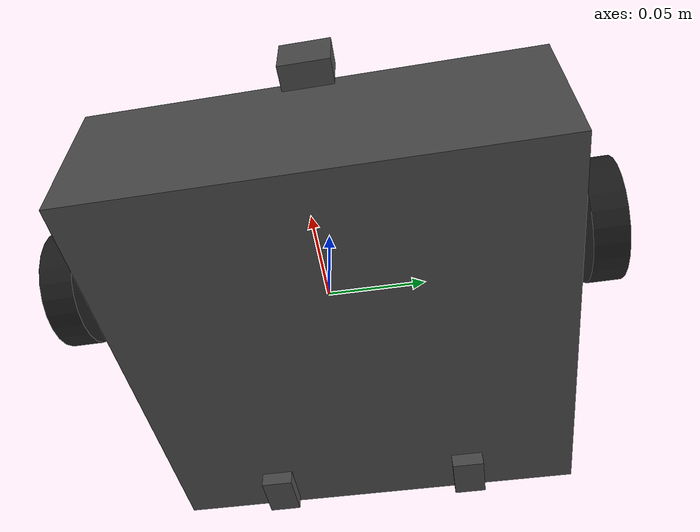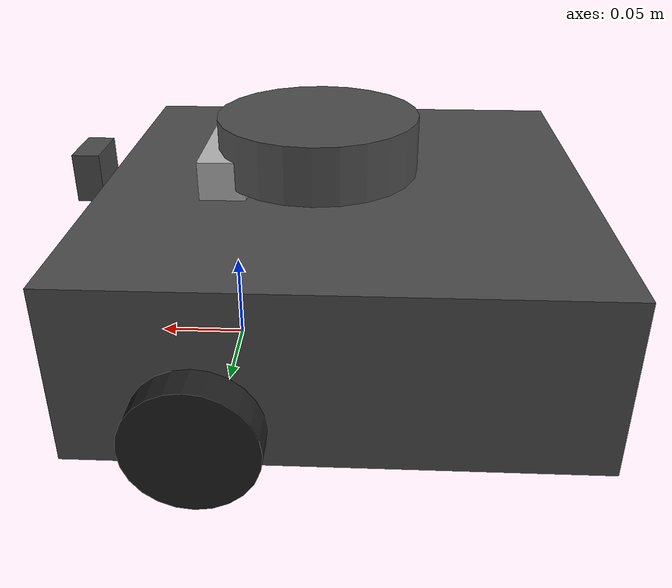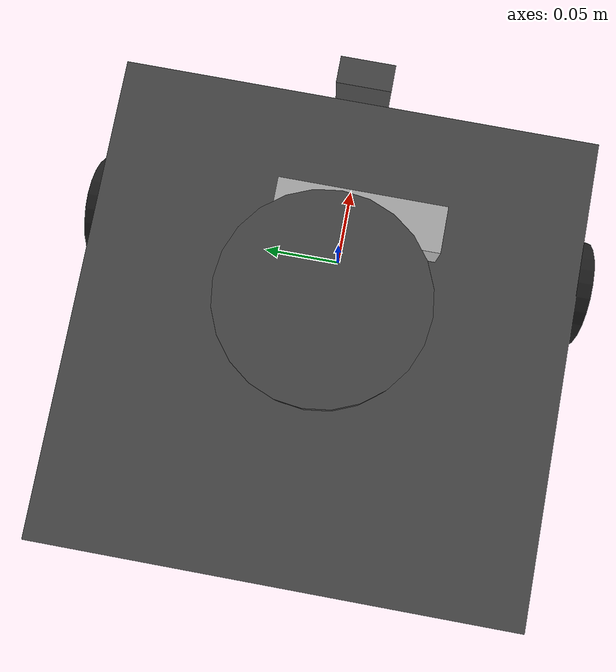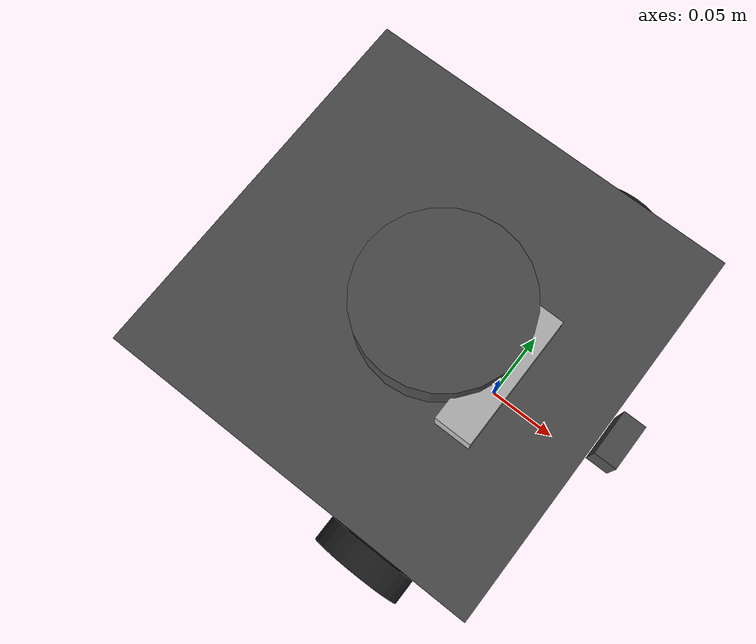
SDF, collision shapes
<?xml version="1.0" ?>
<sdf version='1.6'>
  <model name='turtlebot3_waffle_pi'>
	 <include>
      <uri>model://realsense_model</uri>
      <pose>0 -0.01 0.1 0 0 0</pose>
    </include>

    <joint name="realsense_joint" type="revolute">
      <parent>base_footprint</parent>
      <child>realsense2_camera::base_link</child>
      <axis>
        <limit>
          <lower>0</lower>
          <upper>0</upper>
        </limit>
        <xyz>0 0 1</xyz>
        <use_parent_model_frame>true</use_parent_model_frame>
      </axis>
    </joint>
    <link name='base_footprint'>
      <pose frame=''>0 0 0 0 -0 0</pose>
      <inertial>
        <pose frame=''>-0.006056 0 0.019264 0 -0 0</pose>
        <mass>1.49691</mass>
        <inertia>
          <ixx>0.0133097</ixx>
          <ixy>-4.75766e-05</ixy>
          <ixz>0.000910646</ixz>
          <iyy>0.0139133</iyy>
          <iyz>-3.54223e-06</iyz>
          <izz>0.018379</izz>
        </inertia>
      </inertial>
      <collision name='base_footprint_fixed_joint_lump__base_link_collision'>
        <pose frame=''>-0.064 0 0.057 0 -0 0</pose>
        <geometry>
          <box>
            <size>0.266 0.266 0.094</size>
          </box>
        </geometry>
        <surface>
          <contact>
            <ode/>
          </contact>
          <friction>
            <ode/>
          </friction>
        </surface>
      </collision>
      <collision name='base_footprint_fixed_joint_lump__camera_link_collision_1'>
        <pose frame=''>0.078 0 0.107 0 -0 0</pose>
        <geometry>
          <box>
            <size>0.015 0.03 0.027</size>
          </box>
        </geometry>
      </collision>
      <collision name='base_footprint_fixed_joint_lump__caster_back_left_link_collision_2'>
        <pose frame=''>-0.177 0.064001 0.005 -1.57 0 0</pose>
        <geometry>
          <box>
            <size>0.03 0.009 0.02</size>
          </box>
        </geometry>
        <surface>
          <contact>
            <ode>
              <kp>1e+06</kp>
              <kd>100</kd>
              <max_vel>1</max_vel>
              <min_depth>0.001</min_depth>
            </ode>
          </contact>
          <friction>
            <ode>
              <mu>0.1</mu>
              <mu2>0.1</mu2>
            </ode>
          </friction>
        </surface>
      </collision>
      <collision name='base_footprint_fixed_joint_lump__caster_back_right_link_collision_3'>
        <pose frame=''>-0.177 -0.063999 0.005 -1.57 0 0</pose>
        <geometry>
          <box>
            <size>0.03 0.009 0.02</size>
          </box>
        </geometry>
        <surface>
          <contact>
            <ode>
              <kp>1e+06</kp>
              <kd>100</kd>
              <max_vel>1</max_vel>
              <min_depth>0.001</min_depth>
            </ode>
          </contact>
          <friction>
            <ode>
              <mu>0.1</mu>
              <mu2>0.1</mu2>
            </ode>
          </friction>
        </surface>
      </collision>
      <collision name='base_footprint_fixed_joint_lump__base_scan_collision_4'>
        <pose frame=''>-0.049 0 0.1255 0 -0 0</pose>
        <geometry>
          <cylinder>
            <length>0.0315</length>
            <radius>0.055</radius>
          </cylinder>
        </geometry>
        <surface>
          <contact>
            <ode/>
          </contact>
          <friction>
            <ode/>
          </friction>
        </surface>
      </collision>
      <visual name='base_footprint_fixed_joint_lump__base_link_visual'>
        <pose frame=''>-0.064 0 0.01 0 -0 0</pose>
        <geometry>
          <mesh>
            <scale>0.001 0.001 0.001</scale>
            <uri>model://turtle_and_rs/meshes/bases/waffle_pi_base.stl</uri>
          </mesh>
        </geometry>
        <material>
          <script>
            <name>Gazebo/DarkGrey</name>
            <uri>file://media/materials/scripts/gazebo.material</uri>
          </script>
        </material>
      </visual>
      <visual name='base_footprint_fixed_joint_lump__base_scan_visual_1'>
        <pose frame=''>-0.064 0 0.132 0 -0 0</pose>
        <geometry>
          <mesh>
            <scale>0.001 0.001 0.001</scale>
            <uri>model://turtle_and_rs/meshes/sensors/lds.stl</uri>
          </mesh>
        </geometry>
        <material>
          <script>
            <name>Gazebo/FlatBlack</name>
            <uri>file://media/materials/scripts/gazebo.material</uri>
          </script>
        </material>
      </visual>
      <velocity_decay/>
      <velocity_decay/>
      <sensor name='Pi Camera' type='camera'>
        <always_on>1</always_on>
        <visualize>0</visualize>
        <camera name='__default__'>
          <horizontal_fov>1.0856</horizontal_fov>
          <image>
            <width>640</width>
            <height>480</height>
            <format>R8G8B8</format>
          </image>
          <clip>
            <near>0.03</near>
            <far>100</far>
          </clip>
        </camera>
        <plugin name='camera_controller' filename='libgazebo_ros_camera.so'>
          <alwaysOn>1</alwaysOn>
          <updateRate>30.0</updateRate>
          <cameraName>camera</cameraName>
          <frameName>camera_rgb_optical_frame</frameName>
          <imageTopicName>rgb/image_raw</imageTopicName>
          <cameraInfoTopicName>rgb/camera_info</cameraInfoTopicName>
          <hackBaseline>0.07</hackBaseline>
          <distortionK1>0.0</distortionK1>
          <distortionK2>0.0</distortionK2>
          <distortionK3>0.0</distortionK3>
          <distortionT1>0.0</distortionT1>
          <distortionT2>0.0</distortionT2>
        </plugin>
        <pose frame=''>0.076 0 0.103 0 -0 0</pose>
      </sensor>
      <velocity_decay/>
      <velocity_decay/>
      <velocity_decay/>

      <gravity>1</gravity>
      <velocity_decay/>
      <sensor name='lds_lfcd_sensor' type='ray'>
        <visualize>0</visualize>
        <update_rate>5</update_rate>
        <ray>
          <scan>
            <horizontal>
              <samples>360</samples>
              <resolution>1</resolution>
              <min_angle>0</min_angle>
              <max_angle>6.28319</max_angle>
            </horizontal>
          </scan>
          <range>
            <min>0.12</min>
            <max>3.5</max>
            <resolution>0.015</resolution>
          </range>
          <noise>
            <type>gaussian</type>
            <mean>0</mean>
            <stddev>0.01</stddev>
          </noise>
        </ray>
        <plugin name='gazebo_ros_lds_lfcd_controller' filename='libgazebo_ros_laser.so'>
          <topicName>gazeboscan1</topicName>
          <frameName>base_scan</frameName>
        </plugin>
        <pose frame=''>-0.064 0 0.132 0 -0 0</pose>
      </sensor>
    </link>
    <link name='wheel_left_link'>
      <pose frame=''>0 0.144 0.033 -1.57 0 0</pose>
      <inertial>
        <pose frame=''>0 0 0 0 -0 0</pose>
        <mass>0.0284989</mass>
        <inertia>
          <ixx>1.11756e-05</ixx>
          <ixy>-4.23698e-11</ixy>
          <ixz>-5.93817e-09</ixz>
          <iyy>1.11924e-05</iyy>
          <iyz>-1.44001e-11</iyz>
          <izz>2.07126e-05</izz>
        </inertia>
      </inertial>
      <collision name='wheel_left_link_collision'>
        <pose frame=''>0 0 0 0 -0 0</pose>
        <geometry>
          <cylinder>
            <length>0.018</length>
            <radius>0.033</radius>
          </cylinder>
        </geometry>
        <surface>
          <contact>
            <ode>
              <kp>500000</kp>
              <kd>10</kd>
              <max_vel>0.1</max_vel>
              <min_depth>0.001</min_depth>
            </ode>
          </contact>
          <friction>
            <ode>
              <mu>0.1</mu>
              <mu2>0.1</mu2>
              <fdir1>1 0 0</fdir1>
            </ode>
          </friction>
        </surface>
      </collision>
      <visual name='wheel_left_link_visual'>
        <pose frame=''>0 0 0 1.57 -0 0</pose>
        <geometry>
          <mesh>
            <scale>0.001 0.001 0.001</scale>
            <uri>model://turtle_and_rs/meshes/wheels/left_tire.stl</uri>
          </mesh>
        </geometry>
        <material>
          <script>
            <name>Gazebo/FlatBlack</name>
            <uri>file://media/materials/scripts/gazebo.material</uri>
          </script>
        </material>
      </visual>
      <gravity>1</gravity>
      <velocity_decay/>
    </link>
    <joint name='wheel_left_joint' type='revolute'>
      <child>wheel_left_link</child>
      <parent>base_footprint</parent>
      <axis>
        <xyz>0 1 0.000796</xyz>
        <limit>
          <lower>-1e+16</lower>
          <upper>1e+16</upper>
        </limit>
        <dynamics>
          <spring_reference>0</spring_reference>
          <spring_stiffness>0</spring_stiffness>
        </dynamics>
        <use_parent_model_frame>1</use_parent_model_frame>
      </axis>
    </joint>
    <link name='wheel_right_link'>
      <pose frame=''>0 -0.144 0.033 -1.57 0 0</pose>
      <inertial>
        <pose frame=''>0 0 0 0 -0 0</pose>
        <mass>0.0284989</mass>
        <inertia>
          <ixx>1.11756e-05</ixx>
          <ixy>-4.23698e-11</ixy>
          <ixz>-5.93817e-09</ixz>
          <iyy>1.11924e-05</iyy>
          <iyz>-1.44001e-11</iyz>
          <izz>2.07126e-05</izz>
        </inertia>
      </inertial>
      <collision name='wheel_right_link_collision'>
        <pose frame=''>0 0 0 0 -0 0</pose>
        <geometry>
          <cylinder>
            <length>0.018</length>
            <radius>0.033</radius>
          </cylinder>
        </geometry>
        <surface>
          <contact>
            <ode>
              <kp>500000</kp>
              <kd>10</kd>
              <max_vel>0.1</max_vel>
              <min_depth>0.001</min_depth>
            </ode>
          </contact>
          <friction>
            <ode>
              <mu>0.1</mu>
              <mu2>0.1</mu2>
              <fdir1>1 0 0</fdir1>
            </ode>
          </friction>
        </surface>
      </collision>
      <visual name='wheel_right_link_visual'>
        <pose frame=''>0 0 0 1.57 -0 0</pose>
        <geometry>
          <mesh>
            <scale>0.001 0.001 0.001</scale>
            <uri>model://turtle_and_rs/meshes/wheels/right_tire.stl</uri>
          </mesh>
        </geometry>
        <material>
          <script>
            <name>Gazebo/FlatBlack</name>
            <uri>file://media/materials/scripts/gazebo.material</uri>
          </script>
        </material>
      </visual>
      <gravity>1</gravity>
      <velocity_decay/>
    </link>
    <joint name='wheel_right_joint' type='revolute'>
      <child>wheel_right_link</child>
      <parent>base_footprint</parent>
      <axis>
        <xyz>0 1 0.000796</xyz>
        <limit>
          <lower>-1e+16</lower>
          <upper>1e+16</upper>
        </limit>
        <dynamics>
          <spring_reference>0</spring_reference>
          <spring_stiffness>0</spring_stiffness>
        </dynamics>
        <use_parent_model_frame>1</use_parent_model_frame>
      </axis>
    </joint>

    <plugin name='turtlebot3_waffle_pi_controller' filename='libgazebo_ros_diff_drive.so'>
      <commandTopic>cmd_vel</commandTopic>
      <odometryTopic>odom</odometryTopic>
      <odometryFrame>odom</odometryFrame>
      <odometrySource>world</odometrySource>
      <publishOdomTF>1</publishOdomTF>
      <robotBaseFrame>base_footprint</robotBaseFrame>
      <publishWheelTF>0</publishWheelTF>
      <publishTf>1</publishTf>
      <publishWheelJointState>1</publishWheelJointState>
      <legacyMode>0</legacyMode>
      <updateRate>30</updateRate>
      <leftJoint>wheel_left_joint</leftJoint>
      <rightJoint>wheel_right_joint</rightJoint>
      <wheelSeparation>0.287</wheelSeparation>
      <wheelDiameter>0.066</wheelDiameter>
      <wheelAcceleration>1</wheelAcceleration>
      <wheelTorque>10</wheelTorque>
      <rosDebugLevel>na</rosDebugLevel>
    </plugin>
    <static>0</static>
  </model>
</sdf>

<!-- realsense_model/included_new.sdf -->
<sdf version='1.6'>
  <model name='realsense2_camera'>
    <link name='base_link'>
      <pose frame=''>0 0 0 0 -0 0</pose>
      <inertial>
        <pose frame=''>0 0.0175 0.0125 0 -0 0</pose>
        <mass>0.564</mass>
        <inertia>
          <ixx>0.00388124</ixx>
          <ixy>0</ixy>
          <ixz>0</ixz>
          <iyy>0.00049894</iyy>
          <iyz>0</iyz>
          <izz>0.00387926</izz>
        </inertia>
      </inertial>
      <collision name='base_link_fixed_joint_lump__camera_link_collision'>
        <pose frame=''>0 0 0.0125 0 -0 0</pose>
        <geometry>
          <box>
            <size>0.02505 0.09 0.025</size>
          </box>
        </geometry>
        <surface>
          <contact>
            <ode>
              <kp>1e+13</kp>
              <kd>1</kd>
            </ode>
          </contact>
          <friction>
            <ode>
              <mu2>1</mu2>
              <fdir1>0 0 0</fdir1>
            </ode>
          </friction>
        </surface>
      </collision>
      <visual name='base_link_fixed_joint_lump__camera_link_visual'>
        <pose frame=''>0.0149 0 0.0125 1.5708 -0 1.5708</pose>
        <geometry>
          <mesh>
            <scale>1 1 1</scale>
            <uri>model://realsense2_description/meshes/d435.dae</uri>
          </mesh>
        </geometry>
        <material>
          <script>
            <uri>__default__</uri>
            <name>__default__</name>
          </script>
        </material>
      </visual>
      <gravity>1</gravity>
      <velocity_decay/>
      <self_collide>0</self_collide>
      <enable_wind>0</enable_wind>
      <kinematic>0</kinematic>
      <gravity>1</gravity>
      <sensor name='cameracolor' type='camera'>
        <camera name='camera'>
          <horizontal_fov>1.21126</horizontal_fov>
          <image>
            <width>1920</width>
            <height>1080</height>
            <format>RGB_INT8</format>
          </image>
          <clip>
            <near>0.1</near>
            <far>100</far>
          </clip>
          <noise>
            <type>gaussian</type>
            <mean>0</mean>
            <stddev>0.007</stddev>
          </noise>
        </camera>
        <always_on>1</always_on>
        <update_rate>30</update_rate>
        <visualize>1</visualize>
        <pose frame=''>0 0.0175 0.0125 0 -0 0</pose>
      </sensor>
      <sensor name='cameraired1' type='camera'>
        <camera name='camera'>
          <horizontal_fov>1.48702</horizontal_fov>
          <image>
            <width>1280</width>
            <height>720</height>
            <format>L_INT8</format>
          </image>
          <clip>
            <near>0.1</near>
            <far>100</far>
          </clip>
          <noise>
            <type>gaussian</type>
            <mean>0</mean>
            <stddev>0.05</stddev>
          </noise>
        </camera>
        <always_on>1</always_on>
        <update_rate>90</update_rate>
        <visualize>0</visualize>
        <pose frame=''>0 0.0175 0.0125 0 -0 0</pose>
      </sensor>
      <sensor name='cameraired2' type='camera'>
        <camera name='camera'>
          <horizontal_fov>1.48702</horizontal_fov>
          <image>
            <width>1280</width>
            <height>720</height>
            <format>L_INT8</format>
          </image>
          <clip>
            <near>0.1</near>
            <far>100</far>
          </clip>
          <noise>
            <type>gaussian</type>
            <mean>0</mean>
            <stddev>0.05</stddev>
          </noise>
        </camera>
        <always_on>1</always_on>
        <update_rate>90</update_rate>
        <visualize>0</visualize>
        <pose frame=''>0 0.0175 0.0125 0 -0 0</pose>
      </sensor>
      <sensor name='cameradepth' type='depth'>
        <camera name='camera'>
          <horizontal_fov>1.48702</horizontal_fov>
          <image>
            <width>1280</width>
            <height>720</height>
          </image>
          <clip>
            <near>0.1</near>
            <far>100</far>
          </clip>
          <noise>
            <type>gaussian</type>
            <mean>0</mean>
            <stddev>0.1</stddev>
          </noise>
        </camera>
        <always_on>1</always_on>
        <update_rate>90</update_rate>
        <visualize>0</visualize>
        <pose frame=''>0 0.0175 0.0125 0 -0 0</pose>
      </sensor>
    </link>
    <static>0</static>
    <plugin name='camera' filename='librealsense_gazebo_plugin.so'>
      <prefix>camera</prefix>
      <depthUpdateRate>60.0</depthUpdateRate>
      <colorUpdateRate>60.0</colorUpdateRate>
      <infraredUpdateRate>60.0</infraredUpdateRate>
      <depthTopicName>depth/image_raw</depthTopicName>
      <depthCameraInfoTopicName>depth/camera_info</depthCameraInfoTopicName>
      <colorTopicName>color/image_raw</colorTopicName>
      <colorCameraInfoTopicName>color/camera_info</colorCameraInfoTopicName>
      <infrared1TopicName>infra1/image_raw</infrared1TopicName>
      <infrared1CameraInfoTopicName>infra1/camera_info</infrared1CameraInfoTopicName>
      <infrared2TopicName>infra2/image_raw</infrared2TopicName>
      <infrared2CameraInfoTopicName>infra2/camera_info</infrared2CameraInfoTopicName>
      <colorOpticalframeName>camera_color_optical_frame</colorOpticalframeName>
      <depthOpticalframeName>camera_depth_optical_frame</depthOpticalframeName>
      <infrared1OpticalframeName>camera_left_ir_optical_frame</infrared1OpticalframeName>
      <infrared2OpticalframeName>camera_right_ir_optical_frame</infrared2OpticalframeName>
      <rangeMinDepth>0.2</rangeMinDepth>
      <rangeMaxDepth>10.0</rangeMaxDepth>
      <pointCloud>0</pointCloud>
      <pointCloudTopicName>depth/points</pointCloudTopicName>
      <pointCloudCutoff>0.5</pointCloudCutoff>
    </plugin>
  </model>
</sdf>
